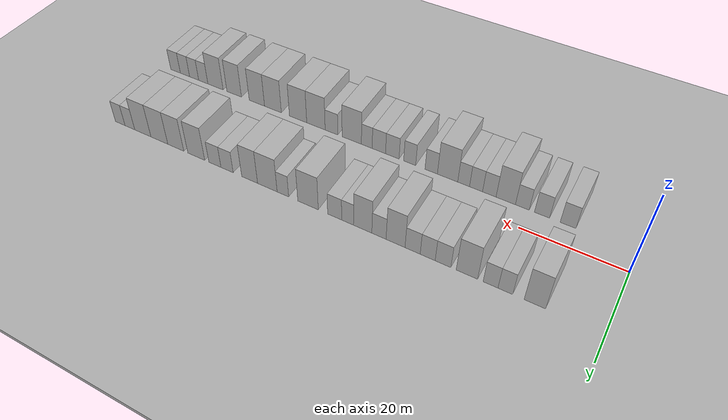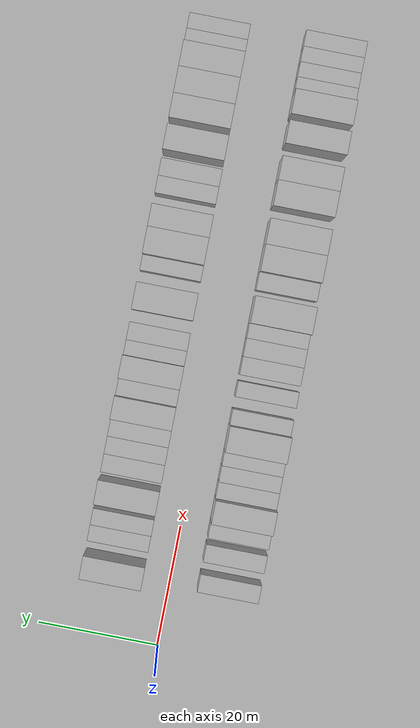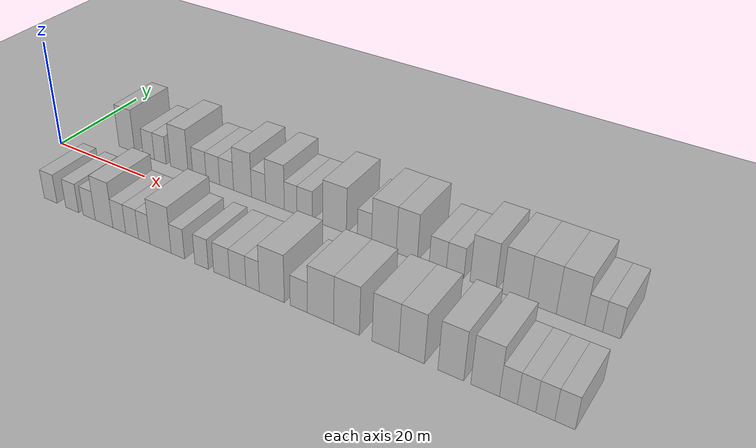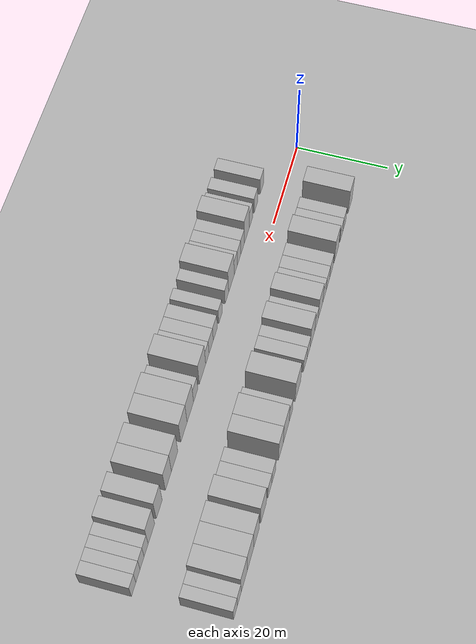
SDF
<sdf version="1.6">
 <world name="default">
  <include><name>ground_plane_1</name><uri>model://HANNAS_ground_plane</uri></include>
  <include>
   <name>ground_plane_2</name>
   <uri>model://HANNAS_ground_plane</uri>
   <pose>100 0 0  0 0 0</pose>
  </include>
  <model name="building_1">
   <static>1</static>
   <pose>11.8664 9.5000 0 0.000000 0.000000 1.570796</pose>
   <link name="link">
    <pose>0 0 4.50 0 0 0</pose>
    <collision name="collision"><geometry><box><size>10.0000 3.7327 9.0000</size></box></geometry></collision>
    <visual name="visual">
     <cast_shadows>0</cast_shadows>
     <geometry><box><size>10.0000 3.7327 9.0000</size></box></geometry>
     <material>
      <script>
       <uri>model://HANNAS_wall/materials/scripts</uri>
       <uri>model://HANNAS_wall/materials/textures</uri>
       <name>vrc/HANNAS_wall</name>
      </script>
     </material>
    </visual>
   </link>
  </model>
  <model name="building_2">
   <static>1</static>
   <pose>17.0461 9.5000 0 0.000000 0.000000 1.570796</pose>
   <link name="link">
    <pose>0 0 3.00 0 0 0</pose>
    <collision name="collision"><geometry><box><size>10.0000 2.6267 6.0000</size></box></geometry></collision>
    <visual name="visual">
     <cast_shadows>0</cast_shadows>
     <geometry><box><size>10.0000 2.6267 6.0000</size></box></geometry>
     <material>
      <script>
       <uri>model://HANNAS_wall/materials/scripts</uri>
       <uri>model://HANNAS_wall/materials/textures</uri>
       <name>vrc/HANNAS_wall</name>
      </script>
     </material>
    </visual>
   </link>
  </model>
  <model name="building_3">
   <static>1</static>
   <pose>19.7053 9.5000 0 0.000000 0.000000 1.570796</pose>
   <link name="link">
    <pose>0 0 3.00 0 0 0</pose>
    <collision name="collision"><geometry><box><size>10.0000 2.6917 6.0000</size></box></geometry></collision>
    <visual name="visual">
     <cast_shadows>0</cast_shadows>
     <geometry><box><size>10.0000 2.6917 6.0000</size></box></geometry>
     <material>
      <script>
       <uri>model://HANNAS_wall/materials/scripts</uri>
       <uri>model://HANNAS_wall/materials/textures</uri>
       <name>vrc/HANNAS_wall</name>
      </script>
     </material>
    </visual>
   </link>
  </model>
  <model name="building_4">
   <static>1</static>
   <pose>24.0307 9.5000 0 0.000000 0.000000 1.570796</pose>
   <link name="link">
    <pose>0 0 4.50 0 0 0</pose>
    <collision name="collision"><geometry><box><size>10.0000 3.9590 9.0000</size></box></geometry></collision>
    <visual name="visual">
     <cast_shadows>0</cast_shadows>
     <geometry><box><size>10.0000 3.9590 9.0000</size></box></geometry>
     <material>
      <script>
       <uri>model://HANNAS_wall/materials/scripts</uri>
       <uri>model://HANNAS_wall/materials/textures</uri>
       <name>vrc/HANNAS_wall</name>
      </script>
     </material>
    </visual>
   </link>
  </model>
  <model name="building_5">
   <static>1</static>
   <pose>28.4933 9.5000 0 0.000000 0.000000 1.570796</pose>
   <link name="link">
    <pose>0 0 3.00 0 0 0</pose>
    <collision name="collision"><geometry><box><size>10.0000 2.9661 6.0000</size></box></geometry></collision>
    <visual name="visual">
     <cast_shadows>0</cast_shadows>
     <geometry><box><size>10.0000 2.9661 6.0000</size></box></geometry>
     <material>
      <script>
       <uri>model://HANNAS_wall/materials/scripts</uri>
       <uri>model://HANNAS_wall/materials/textures</uri>
       <name>vrc/HANNAS_wall</name>
      </script>
     </material>
    </visual>
   </link>
  </model>
  <model name="building_6">
   <static>1</static>
   <pose>31.4169 9.5000 0 0.000000 0.000000 1.570796</pose>
   <link name="link">
    <pose>0 0 3.00 0 0 0</pose>
    <collision name="collision"><geometry><box><size>10.0000 2.8813 6.0000</size></box></geometry></collision>
    <visual name="visual">
     <cast_shadows>0</cast_shadows>
     <geometry><box><size>10.0000 2.8813 6.0000</size></box></geometry>
     <material>
      <script>
       <uri>model://HANNAS_wall/materials/scripts</uri>
       <uri>model://HANNAS_wall/materials/textures</uri>
       <name>vrc/HANNAS_wall</name>
      </script>
     </material>
    </visual>
   </link>
  </model>
  <model name="building_7">
   <static>1</static>
   <pose>34.3344 9.5000 0 0.000000 0.000000 1.570796</pose>
   <link name="link">
    <pose>0 0 3.00 0 0 0</pose>
    <collision name="collision"><geometry><box><size>10.0000 2.9536 6.0000</size></box></geometry></collision>
    <visual name="visual">
     <cast_shadows>0</cast_shadows>
     <geometry><box><size>10.0000 2.9536 6.0000</size></box></geometry>
     <material>
      <script>
       <uri>model://HANNAS_wall/materials/scripts</uri>
       <uri>model://HANNAS_wall/materials/textures</uri>
       <name>vrc/HANNAS_wall</name>
      </script>
     </material>
    </visual>
   </link>
  </model>
  <model name="building_8">
   <static>1</static>
   <pose>37.6866 9.5000 0 0.000000 0.000000 1.570796</pose>
   <link name="link">
    <pose>0 0 4.50 0 0 0</pose>
    <collision name="collision"><geometry><box><size>10.0000 3.7509 9.0000</size></box></geometry></collision>
    <visual name="visual">
     <cast_shadows>0</cast_shadows>
     <geometry><box><size>10.0000 3.7509 9.0000</size></box></geometry>
     <material>
      <script>
       <uri>model://HANNAS_wall/materials/scripts</uri>
       <uri>model://HANNAS_wall/materials/textures</uri>
       <name>vrc/HANNAS_wall</name>
      </script>
     </material>
    </visual>
   </link>
  </model>
  <model name="building_9">
   <static>1</static>
   <pose>40.9992 9.5000 0 0.000000 0.000000 1.570796</pose>
   <link name="link">
    <pose>0 0 3.00 0 0 0</pose>
    <collision name="collision"><geometry><box><size>10.0000 2.8742 6.0000</size></box></geometry></collision>
    <visual name="visual">
     <cast_shadows>0</cast_shadows>
     <geometry><box><size>10.0000 2.8742 6.0000</size></box></geometry>
     <material>
      <script>
       <uri>model://HANNAS_wall/materials/scripts</uri>
       <uri>model://HANNAS_wall/materials/textures</uri>
       <name>vrc/HANNAS_wall</name>
      </script>
     </material>
    </visual>
   </link>
  </model>
  <model name="building_10">
   <static>1</static>
   <pose>44.3162 9.5000 0 0.000000 0.000000 1.570796</pose>
   <link name="link">
    <pose>0 0 4.50 0 0 0</pose>
    <collision name="collision"><geometry><box><size>10.0000 3.7599 9.0000</size></box></geometry></collision>
    <visual name="visual">
     <cast_shadows>0</cast_shadows>
     <geometry><box><size>10.0000 3.7599 9.0000</size></box></geometry>
     <material>
      <script>
       <uri>model://HANNAS_wall/materials/scripts</uri>
       <uri>model://HANNAS_wall/materials/textures</uri>
       <name>vrc/HANNAS_wall</name>
      </script>
     </material>
    </visual>
   </link>
  </model>
  <model name="building_11">
   <static>1</static>
   <pose>47.4281 9.5000 0 0.000000 0.000000 1.570796</pose>
   <link name="link">
    <pose>0 0 3.00 0 0 0</pose>
    <collision name="collision"><geometry><box><size>10.0000 2.4638 6.0000</size></box></geometry></collision>
    <visual name="visual">
     <cast_shadows>0</cast_shadows>
     <geometry><box><size>10.0000 2.4638 6.0000</size></box></geometry>
     <material>
      <script>
       <uri>model://HANNAS_wall/materials/scripts</uri>
       <uri>model://HANNAS_wall/materials/textures</uri>
       <name>vrc/HANNAS_wall</name>
      </script>
     </material>
    </visual>
   </link>
  </model>
  <model name="building_12">
   <static>1</static>
   <pose>50.1368 9.5000 0 0.000000 0.000000 1.570796</pose>
   <link name="link">
    <pose>0 0 3.00 0 0 0</pose>
    <collision name="collision"><geometry><box><size>10.0000 2.9536 6.0000</size></box></geometry></collision>
    <visual name="visual">
     <cast_shadows>0</cast_shadows>
     <geometry><box><size>10.0000 2.9536 6.0000</size></box></geometry>
     <material>
      <script>
       <uri>model://HANNAS_wall/materials/scripts</uri>
       <uri>model://HANNAS_wall/materials/textures</uri>
       <name>vrc/HANNAS_wall</name>
      </script>
     </material>
    </visual>
   </link>
  </model>
  <model name="building_13">
   <static>1</static>
   <pose>55.8347 9.5000 0 0.000000 0.000000 1.570796</pose>
   <link name="link">
    <pose>0 0 4.50 0 0 0</pose>
    <collision name="collision"><geometry><box><size>10.0000 4.4424 9.0000</size></box></geometry></collision>
    <visual name="visual">
     <cast_shadows>0</cast_shadows>
     <geometry><box><size>10.0000 4.4424 9.0000</size></box></geometry>
     <material>
      <script>
       <uri>model://HANNAS_wall/materials/scripts</uri>
       <uri>model://HANNAS_wall/materials/textures</uri>
       <name>vrc/HANNAS_wall</name>
      </script>
     </material>
    </visual>
   </link>
  </model>
  <model name="building_14">
   <static>1</static>
   <pose>61.3404 9.5000 0 0.000000 0.000000 1.570796</pose>
   <link name="link">
    <pose>0 0 3.00 0 0 0</pose>
    <collision name="collision"><geometry><box><size>10.0000 2.5689 6.0000</size></box></geometry></collision>
    <visual name="visual">
     <cast_shadows>0</cast_shadows>
     <geometry><box><size>10.0000 2.5689 6.0000</size></box></geometry>
     <material>
      <script>
       <uri>model://HANNAS_wall/materials/scripts</uri>
       <uri>model://HANNAS_wall/materials/textures</uri>
       <name>vrc/HANNAS_wall</name>
      </script>
     </material>
    </visual>
   </link>
  </model>
  <model name="building_15">
   <static>1</static>
   <pose>64.8377 9.5000 0 0.000000 0.000000 1.570796</pose>
   <link name="link">
    <pose>0 0 4.50 0 0 0</pose>
    <collision name="collision"><geometry><box><size>10.0000 4.4256 9.0000</size></box></geometry></collision>
    <visual name="visual">
     <cast_shadows>0</cast_shadows>
     <geometry><box><size>10.0000 4.4256 9.0000</size></box></geometry>
     <material>
      <script>
       <uri>model://HANNAS_wall/materials/scripts</uri>
       <uri>model://HANNAS_wall/materials/textures</uri>
       <name>vrc/HANNAS_wall</name>
      </script>
     </material>
    </visual>
   </link>
  </model>
  <model name="building_16">
   <static>1</static>
   <pose>68.8795 9.5000 0 0.000000 0.000000 1.570796</pose>
   <link name="link">
    <pose>0 0 4.50 0 0 0</pose>
    <collision name="collision"><geometry><box><size>10.0000 3.6580 9.0000</size></box></geometry></collision>
    <visual name="visual">
     <cast_shadows>0</cast_shadows>
     <geometry><box><size>10.0000 3.6580 9.0000</size></box></geometry>
     <material>
      <script>
       <uri>model://HANNAS_wall/materials/scripts</uri>
       <uri>model://HANNAS_wall/materials/textures</uri>
       <name>vrc/HANNAS_wall</name>
      </script>
     </material>
    </visual>
   </link>
  </model>
  <model name="building_17">
   <static>1</static>
   <pose>74.1507 9.5000 0 0.000000 0.000000 1.570796</pose>
   <link name="link">
    <pose>0 0 3.00 0 0 0</pose>
    <collision name="collision"><geometry><box><size>10.0000 2.8844 6.0000</size></box></geometry></collision>
    <visual name="visual">
     <cast_shadows>0</cast_shadows>
     <geometry><box><size>10.0000 2.8844 6.0000</size></box></geometry>
     <material>
      <script>
       <uri>model://HANNAS_wall/materials/scripts</uri>
       <uri>model://HANNAS_wall/materials/textures</uri>
       <name>vrc/HANNAS_wall</name>
      </script>
     </material>
    </visual>
   </link>
  </model>
  <model name="building_18">
   <static>1</static>
   <pose>77.0405 9.5000 0 0.000000 0.000000 1.570796</pose>
   <link name="link">
    <pose>0 0 3.00 0 0 0</pose>
    <collision name="collision"><geometry><box><size>10.0000 2.8953 6.0000</size></box></geometry></collision>
    <visual name="visual">
     <cast_shadows>0</cast_shadows>
     <geometry><box><size>10.0000 2.8953 6.0000</size></box></geometry>
     <material>
      <script>
       <uri>model://HANNAS_wall/materials/scripts</uri>
       <uri>model://HANNAS_wall/materials/textures</uri>
       <name>vrc/HANNAS_wall</name>
      </script>
     </material>
    </visual>
   </link>
  </model>
  <model name="building_19">
   <static>1</static>
   <pose>81.5546 9.5000 0 0.000000 0.000000 1.570796</pose>
   <link name="link">
    <pose>0 0 4.50 0 0 0</pose>
    <collision name="collision"><geometry><box><size>10.0000 4.1329 9.0000</size></box></geometry></collision>
    <visual name="visual">
     <cast_shadows>0</cast_shadows>
     <geometry><box><size>10.0000 4.1329 9.0000</size></box></geometry>
     <material>
      <script>
       <uri>model://HANNAS_wall/materials/scripts</uri>
       <uri>model://HANNAS_wall/materials/textures</uri>
       <name>vrc/HANNAS_wall</name>
      </script>
     </material>
    </visual>
   </link>
  </model>
  <model name="building_20">
   <static>1</static>
   <pose>86.6228 9.5000 0 0.000000 0.000000 1.570796</pose>
   <link name="link">
    <pose>0 0 4.50 0 0 0</pose>
    <collision name="collision"><geometry><box><size>10.0000 4.0037 9.0000</size></box></geometry></collision>
    <visual name="visual">
     <cast_shadows>0</cast_shadows>
     <geometry><box><size>10.0000 4.0037 9.0000</size></box></geometry>
     <material>
      <script>
       <uri>model://HANNAS_wall/materials/scripts</uri>
       <uri>model://HANNAS_wall/materials/textures</uri>
       <name>vrc/HANNAS_wall</name>
      </script>
     </material>
    </visual>
   </link>
  </model>
  <model name="building_21">
   <static>1</static>
   <pose>90.7758 9.5000 0 0.000000 0.000000 1.570796</pose>
   <link name="link">
    <pose>0 0 4.50 0 0 0</pose>
    <collision name="collision"><geometry><box><size>10.0000 4.3022 9.0000</size></box></geometry></collision>
    <visual name="visual">
     <cast_shadows>0</cast_shadows>
     <geometry><box><size>10.0000 4.3022 9.0000</size></box></geometry>
     <material>
      <script>
       <uri>model://HANNAS_wall/materials/scripts</uri>
       <uri>model://HANNAS_wall/materials/textures</uri>
       <name>vrc/HANNAS_wall</name>
      </script>
     </material>
    </visual>
   </link>
  </model>
  <model name="building_22">
   <static>1</static>
   <pose>95.0272 9.5000 0 0.000000 0.000000 1.570796</pose>
   <link name="link">
    <pose>0 0 4.50 0 0 0</pose>
    <collision name="collision"><geometry><box><size>10.0000 4.2006 9.0000</size></box></geometry></collision>
    <visual name="visual">
     <cast_shadows>0</cast_shadows>
     <geometry><box><size>10.0000 4.2006 9.0000</size></box></geometry>
     <material>
      <script>
       <uri>model://HANNAS_wall/materials/scripts</uri>
       <uri>model://HANNAS_wall/materials/textures</uri>
       <name>vrc/HANNAS_wall</name>
      </script>
     </material>
    </visual>
   </link>
  </model>
  <model name="building_23">
   <static>1</static>
   <pose>98.4095 9.5000 0 0.000000 0.000000 1.570796</pose>
   <link name="link">
    <pose>0 0 3.00 0 0 0</pose>
    <collision name="collision"><geometry><box><size>10.0000 2.5641 6.0000</size></box></geometry></collision>
    <visual name="visual">
     <cast_shadows>0</cast_shadows>
     <geometry><box><size>10.0000 2.5641 6.0000</size></box></geometry>
     <material>
      <script>
       <uri>model://HANNAS_wall/materials/scripts</uri>
       <uri>model://HANNAS_wall/materials/textures</uri>
       <name>vrc/HANNAS_wall</name>
      </script>
     </material>
    </visual>
   </link>
  </model>
  <model name="building_24">
   <static>1</static>
   <pose>100.9636 9.5000 0 0.000000 0.000000 1.570796</pose>
   <link name="link">
    <pose>0 0 3.00 0 0 0</pose>
    <collision name="collision"><geometry><box><size>10.0000 2.5440 6.0000</size></box></geometry></collision>
    <visual name="visual">
     <cast_shadows>0</cast_shadows>
     <geometry><box><size>10.0000 2.5440 6.0000</size></box></geometry>
     <material>
      <script>
       <uri>model://HANNAS_wall/materials/scripts</uri>
       <uri>model://HANNAS_wall/materials/textures</uri>
       <name>vrc/HANNAS_wall</name>
      </script>
     </material>
    </visual>
   </link>
  </model>
  <model name="building_49">
   <static>1</static>
   <pose>12.4705 -9.5000 0 0.000000 0.000000 1.570796</pose>
   <link name="link">
    <pose>0 0 3.00 0 0 0</pose>
    <collision name="collision"><geometry><box><size>10.0000 2.9409 6.0000</size></box></geometry></collision>
    <visual name="visual">
     <cast_shadows>0</cast_shadows>
     <geometry><box><size>10.0000 2.9409 6.0000</size></box></geometry>
     <material>
      <script>
       <uri>model://HANNAS_wall/materials/scripts</uri>
       <uri>model://HANNAS_wall/materials/textures</uri>
       <name>vrc/HANNAS_wall</name>
      </script>
     </material>
    </visual>
   </link>
  </model>
  <model name="building_50">
   <static>1</static>
   <pose>17.3857 -9.5000 0 0.000000 0.000000 1.570796</pose>
   <link name="link">
    <pose>0 0 3.00 0 0 0</pose>
    <collision name="collision"><geometry><box><size>10.0000 2.8896 6.0000</size></box></geometry></collision>
    <visual name="visual">
     <cast_shadows>0</cast_shadows>
     <geometry><box><size>10.0000 2.8896 6.0000</size></box></geometry>
     <material>
      <script>
       <uri>model://HANNAS_wall/materials/scripts</uri>
       <uri>model://HANNAS_wall/materials/textures</uri>
       <name>vrc/HANNAS_wall</name>
      </script>
     </material>
    </visual>
   </link>
  </model>
  <model name="building_51">
   <static>1</static>
   <pose>21.1754 -9.5000 0 0.000000 0.000000 1.570796</pose>
   <link name="link">
    <pose>0 0 3.00 0 0 0</pose>
    <collision name="collision"><geometry><box><size>10.0000 2.6898 6.0000</size></box></geometry></collision>
    <visual name="visual">
     <cast_shadows>0</cast_shadows>
     <geometry><box><size>10.0000 2.6898 6.0000</size></box></geometry>
     <material>
      <script>
       <uri>model://HANNAS_wall/materials/scripts</uri>
       <uri>model://HANNAS_wall/materials/textures</uri>
       <name>vrc/HANNAS_wall</name>
      </script>
     </material>
    </visual>
   </link>
  </model>
  <model name="building_52">
   <static>1</static>
   <pose>24.4314 -9.5000 0 0.000000 0.000000 1.570796</pose>
   <link name="link">
    <pose>0 0 4.50 0 0 0</pose>
    <collision name="collision"><geometry><box><size>10.0000 3.8222 9.0000</size></box></geometry></collision>
    <visual name="visual">
     <cast_shadows>0</cast_shadows>
     <geometry><box><size>10.0000 3.8222 9.0000</size></box></geometry>
     <material>
      <script>
       <uri>model://HANNAS_wall/materials/scripts</uri>
       <uri>model://HANNAS_wall/materials/textures</uri>
       <name>vrc/HANNAS_wall</name>
      </script>
     </material>
    </visual>
   </link>
  </model>
  <model name="building_53">
   <static>1</static>
   <pose>27.6961 -9.5000 0 0.000000 0.000000 1.570796</pose>
   <link name="link">
    <pose>0 0 3.00 0 0 0</pose>
    <collision name="collision"><geometry><box><size>10.0000 2.7071 6.0000</size></box></geometry></collision>
    <visual name="visual">
     <cast_shadows>0</cast_shadows>
     <geometry><box><size>10.0000 2.7071 6.0000</size></box></geometry>
     <material>
      <script>
       <uri>model://HANNAS_wall/materials/scripts</uri>
       <uri>model://HANNAS_wall/materials/textures</uri>
       <name>vrc/HANNAS_wall</name>
      </script>
     </material>
    </visual>
   </link>
  </model>
  <model name="building_54">
   <static>1</static>
   <pose>30.3775 -9.5000 0 0.000000 0.000000 1.570796</pose>
   <link name="link">
    <pose>0 0 3.00 0 0 0</pose>
    <collision name="collision"><geometry><box><size>10.0000 2.6558 6.0000</size></box></geometry></collision>
    <visual name="visual">
     <cast_shadows>0</cast_shadows>
     <geometry><box><size>10.0000 2.6558 6.0000</size></box></geometry>
     <material>
      <script>
       <uri>model://HANNAS_wall/materials/scripts</uri>
       <uri>model://HANNAS_wall/materials/textures</uri>
       <name>vrc/HANNAS_wall</name>
      </script>
     </material>
    </visual>
   </link>
  </model>
  <model name="building_55">
   <static>1</static>
   <pose>32.9173 -9.5000 0 0.000000 0.000000 1.570796</pose>
   <link name="link">
    <pose>0 0 3.00 0 0 0</pose>
    <collision name="collision"><geometry><box><size>10.0000 2.4237 6.0000</size></box></geometry></collision>
    <visual name="visual">
     <cast_shadows>0</cast_shadows>
     <geometry><box><size>10.0000 2.4237 6.0000</size></box></geometry>
     <material>
      <script>
       <uri>model://HANNAS_wall/materials/scripts</uri>
       <uri>model://HANNAS_wall/materials/textures</uri>
       <name>vrc/HANNAS_wall</name>
      </script>
     </material>
    </visual>
   </link>
  </model>
  <model name="building_56">
   <static>1</static>
   <pose>36.2519 -9.5000 0 0.000000 0.000000 1.570796</pose>
   <link name="link">
    <pose>0 0 4.50 0 0 0</pose>
    <collision name="collision"><geometry><box><size>10.0000 4.2456 9.0000</size></box></geometry></collision>
    <visual name="visual">
     <cast_shadows>0</cast_shadows>
     <geometry><box><size>10.0000 4.2456 9.0000</size></box></geometry>
     <material>
      <script>
       <uri>model://HANNAS_wall/materials/scripts</uri>
       <uri>model://HANNAS_wall/materials/textures</uri>
       <name>vrc/HANNAS_wall</name>
      </script>
     </material>
    </visual>
   </link>
  </model>
  <model name="building_57">
   <static>1</static>
   <pose>39.6938 -9.5000 0 0.000000 0.000000 1.570796</pose>
   <link name="link">
    <pose>0 0 3.00 0 0 0</pose>
    <collision name="collision"><geometry><box><size>10.0000 2.6381 6.0000</size></box></geometry></collision>
    <visual name="visual">
     <cast_shadows>0</cast_shadows>
     <geometry><box><size>10.0000 2.6381 6.0000</size></box></geometry>
     <material>
      <script>
       <uri>model://HANNAS_wall/materials/scripts</uri>
       <uri>model://HANNAS_wall/materials/textures</uri>
       <name>vrc/HANNAS_wall</name>
      </script>
     </material>
    </visual>
   </link>
  </model>
  <model name="building_58">
   <static>1</static>
   <pose>44.3175 -9.5000 0 0.000000 0.000000 1.570796</pose>
   <link name="link">
    <pose>0 0 3.00 0 0 0</pose>
    <collision name="collision"><geometry><box><size>10.0000 2.6094 6.0000</size></box></geometry></collision>
    <visual name="visual">
     <cast_shadows>0</cast_shadows>
     <geometry><box><size>10.0000 2.6094 6.0000</size></box></geometry>
     <material>
      <script>
       <uri>model://HANNAS_wall/materials/scripts</uri>
       <uri>model://HANNAS_wall/materials/textures</uri>
       <name>vrc/HANNAS_wall</name>
      </script>
     </material>
    </visual>
   </link>
  </model>
  <model name="building_59">
   <static>1</static>
   <pose>48.1155 -9.5000 0 0.000000 0.000000 1.570796</pose>
   <link name="link">
    <pose>0 0 3.00 0 0 0</pose>
    <collision name="collision"><geometry><box><size>10.0000 2.9866 6.0000</size></box></geometry></collision>
    <visual name="visual">
     <cast_shadows>0</cast_shadows>
     <geometry><box><size>10.0000 2.9866 6.0000</size></box></geometry>
     <material>
      <script>
       <uri>model://HANNAS_wall/materials/scripts</uri>
       <uri>model://HANNAS_wall/materials/textures</uri>
       <name>vrc/HANNAS_wall</name>
      </script>
     </material>
    </visual>
   </link>
  </model>
  <model name="building_60">
   <static>1</static>
   <pose>51.1075 -9.5000 0 0.000000 0.000000 1.570796</pose>
   <link name="link">
    <pose>0 0 3.00 0 0 0</pose>
    <collision name="collision"><geometry><box><size>10.0000 2.9973 6.0000</size></box></geometry></collision>
    <visual name="visual">
     <cast_shadows>0</cast_shadows>
     <geometry><box><size>10.0000 2.9973 6.0000</size></box></geometry>
     <material>
      <script>
       <uri>model://HANNAS_wall/materials/scripts</uri>
       <uri>model://HANNAS_wall/materials/textures</uri>
       <name>vrc/HANNAS_wall</name>
      </script>
     </material>
    </visual>
   </link>
  </model>
  <model name="building_61">
   <static>1</static>
   <pose>53.8229 -9.5000 0 0.000000 0.000000 1.570796</pose>
   <link name="link">
    <pose>0 0 3.00 0 0 0</pose>
    <collision name="collision"><geometry><box><size>10.0000 2.4335 6.0000</size></box></geometry></collision>
    <visual name="visual">
     <cast_shadows>0</cast_shadows>
     <geometry><box><size>10.0000 2.4335 6.0000</size></box></geometry>
     <material>
      <script>
       <uri>model://HANNAS_wall/materials/scripts</uri>
       <uri>model://HANNAS_wall/materials/textures</uri>
       <name>vrc/HANNAS_wall</name>
      </script>
     </material>
    </visual>
   </link>
  </model>
  <model name="building_62">
   <static>1</static>
   <pose>57.2572 -9.5000 0 0.000000 0.000000 1.570796</pose>
   <link name="link">
    <pose>0 0 4.50 0 0 0</pose>
    <collision name="collision"><geometry><box><size>10.0000 4.4351 9.0000</size></box></geometry></collision>
    <visual name="visual">
     <cast_shadows>0</cast_shadows>
     <geometry><box><size>10.0000 4.4351 9.0000</size></box></geometry>
     <material>
      <script>
       <uri>model://HANNAS_wall/materials/scripts</uri>
       <uri>model://HANNAS_wall/materials/textures</uri>
       <name>vrc/HANNAS_wall</name>
      </script>
     </material>
    </visual>
   </link>
  </model>
  <model name="building_63">
   <static>1</static>
   <pose>61.9552 -9.5000 0 0.000000 0.000000 1.570796</pose>
   <link name="link">
    <pose>0 0 3.00 0 0 0</pose>
    <collision name="collision"><geometry><box><size>10.0000 2.9607 6.0000</size></box></geometry></collision>
    <visual name="visual">
     <cast_shadows>0</cast_shadows>
     <geometry><box><size>10.0000 2.9607 6.0000</size></box></geometry>
     <material>
      <script>
       <uri>model://HANNAS_wall/materials/scripts</uri>
       <uri>model://HANNAS_wall/materials/textures</uri>
       <name>vrc/HANNAS_wall</name>
      </script>
     </material>
    </visual>
   </link>
  </model>
  <model name="building_64">
   <static>1</static>
   <pose>65.6336 -9.5000 0 0.000000 0.000000 1.570796</pose>
   <link name="link">
    <pose>0 0 4.50 0 0 0</pose>
    <collision name="collision"><geometry><box><size>10.0000 4.3963 9.0000</size></box></geometry></collision>
    <visual name="visual">
     <cast_shadows>0</cast_shadows>
     <geometry><box><size>10.0000 4.3963 9.0000</size></box></geometry>
     <material>
      <script>
       <uri>model://HANNAS_wall/materials/scripts</uri>
       <uri>model://HANNAS_wall/materials/textures</uri>
       <name>vrc/HANNAS_wall</name>
      </script>
     </material>
    </visual>
   </link>
  </model>
  <model name="building_65">
   <static>1</static>
   <pose>69.9292 -9.5000 0 0.000000 0.000000 1.570796</pose>
   <link name="link">
    <pose>0 0 4.50 0 0 0</pose>
    <collision name="collision"><geometry><box><size>10.0000 4.1949 9.0000</size></box></geometry></collision>
    <visual name="visual">
     <cast_shadows>0</cast_shadows>
     <geometry><box><size>10.0000 4.1949 9.0000</size></box></geometry>
     <material>
      <script>
       <uri>model://HANNAS_wall/materials/scripts</uri>
       <uri>model://HANNAS_wall/materials/textures</uri>
       <name>vrc/HANNAS_wall</name>
      </script>
     </material>
    </visual>
   </link>
  </model>
  <model name="building_66">
   <static>1</static>
   <pose>76.1218 -9.5000 0 0.000000 0.000000 1.570796</pose>
   <link name="link">
    <pose>0 0 4.50 0 0 0</pose>
    <collision name="collision"><geometry><box><size>10.0000 4.1903 9.0000</size></box></geometry></collision>
    <visual name="visual">
     <cast_shadows>0</cast_shadows>
     <geometry><box><size>10.0000 4.1903 9.0000</size></box></geometry>
     <material>
      <script>
       <uri>model://HANNAS_wall/materials/scripts</uri>
       <uri>model://HANNAS_wall/materials/textures</uri>
       <name>vrc/HANNAS_wall</name>
      </script>
     </material>
    </visual>
   </link>
  </model>
  <model name="building_67">
   <static>1</static>
   <pose>80.1644 -9.5000 0 0.000000 0.000000 1.570796</pose>
   <link name="link">
    <pose>0 0 4.50 0 0 0</pose>
    <collision name="collision"><geometry><box><size>10.0000 3.8949 9.0000</size></box></geometry></collision>
    <visual name="visual">
     <cast_shadows>0</cast_shadows>
     <geometry><box><size>10.0000 3.8949 9.0000</size></box></geometry>
     <material>
      <script>
       <uri>model://HANNAS_wall/materials/scripts</uri>
       <uri>model://HANNAS_wall/materials/textures</uri>
       <name>vrc/HANNAS_wall</name>
      </script>
     </material>
    </visual>
   </link>
  </model>
  <model name="building_68">
   <static>1</static>
   <pose>86.0014 -9.5000 0 0.000000 0.000000 1.570796</pose>
   <link name="link">
    <pose>0 0 4.50 0 0 0</pose>
    <collision name="collision"><geometry><box><size>10.0000 3.7792 9.0000</size></box></geometry></collision>
    <visual name="visual">
     <cast_shadows>0</cast_shadows>
     <geometry><box><size>10.0000 3.7792 9.0000</size></box></geometry>
     <material>
      <script>
       <uri>model://HANNAS_wall/materials/scripts</uri>
       <uri>model://HANNAS_wall/materials/textures</uri>
       <name>vrc/HANNAS_wall</name>
      </script>
     </material>
    </visual>
   </link>
  </model>
  <model name="building_69">
   <static>1</static>
   <pose>90.9168 -9.5000 0 0.000000 0.000000 1.570796</pose>
   <link name="link">
    <pose>0 0 4.50 0 0 0</pose>
    <collision name="collision"><geometry><box><size>10.0000 4.0516 9.0000</size></box></geometry></collision>
    <visual name="visual">
     <cast_shadows>0</cast_shadows>
     <geometry><box><size>10.0000 4.0516 9.0000</size></box></geometry>
     <material>
      <script>
       <uri>model://HANNAS_wall/materials/scripts</uri>
       <uri>model://HANNAS_wall/materials/textures</uri>
       <name>vrc/HANNAS_wall</name>
      </script>
     </material>
    </visual>
   </link>
  </model>
  <model name="building_70">
   <static>1</static>
   <pose>94.1796 -9.5000 0 0.000000 0.000000 1.570796</pose>
   <link name="link">
    <pose>0 0 3.00 0 0 0</pose>
    <collision name="collision"><geometry><box><size>10.0000 2.4739 6.0000</size></box></geometry></collision>
    <visual name="visual">
     <cast_shadows>0</cast_shadows>
     <geometry><box><size>10.0000 2.4739 6.0000</size></box></geometry>
     <material>
      <script>
       <uri>model://HANNAS_wall/materials/scripts</uri>
       <uri>model://HANNAS_wall/materials/textures</uri>
       <name>vrc/HANNAS_wall</name>
      </script>
     </material>
    </visual>
   </link>
  </model>
  <model name="building_71">
   <static>1</static>
   <pose>96.6518 -9.5000 0 0.000000 0.000000 1.570796</pose>
   <link name="link">
    <pose>0 0 3.00 0 0 0</pose>
    <collision name="collision"><geometry><box><size>10.0000 2.4704 6.0000</size></box></geometry></collision>
    <visual name="visual">
     <cast_shadows>0</cast_shadows>
     <geometry><box><size>10.0000 2.4704 6.0000</size></box></geometry>
     <material>
      <script>
       <uri>model://HANNAS_wall/materials/scripts</uri>
       <uri>model://HANNAS_wall/materials/textures</uri>
       <name>vrc/HANNAS_wall</name>
      </script>
     </material>
    </visual>
   </link>
  </model>
  <model name="building_72">
   <static>1</static>
   <pose>99.1553 -9.5000 0 0.000000 0.000000 1.570796</pose>
   <link name="link">
    <pose>0 0 3.00 0 0 0</pose>
    <collision name="collision"><geometry><box><size>10.0000 2.5368 6.0000</size></box></geometry></collision>
    <visual name="visual">
     <cast_shadows>0</cast_shadows>
     <geometry><box><size>10.0000 2.5368 6.0000</size></box></geometry>
     <material>
      <script>
       <uri>model://HANNAS_wall/materials/scripts</uri>
       <uri>model://HANNAS_wall/materials/textures</uri>
       <name>vrc/HANNAS_wall</name>
      </script>
     </material>
    </visual>
   </link>
  </model>
  <model name="building_73">
   <static>1</static>
   <pose>101.7521 -9.5000 0 0.000000 0.000000 1.570796</pose>
   <link name="link">
    <pose>0 0 3.00 0 0 0</pose>
    <collision name="collision"><geometry><box><size>10.0000 2.6567 6.0000</size></box></geometry></collision>
    <visual name="visual">
     <cast_shadows>0</cast_shadows>
     <geometry><box><size>10.0000 2.6567 6.0000</size></box></geometry>
     <material>
      <script>
       <uri>model://HANNAS_wall/materials/scripts</uri>
       <uri>model://HANNAS_wall/materials/textures</uri>
       <name>vrc/HANNAS_wall</name>
      </script>
     </material>
    </visual>
   </link>
  </model>
 </world>
</sdf>
